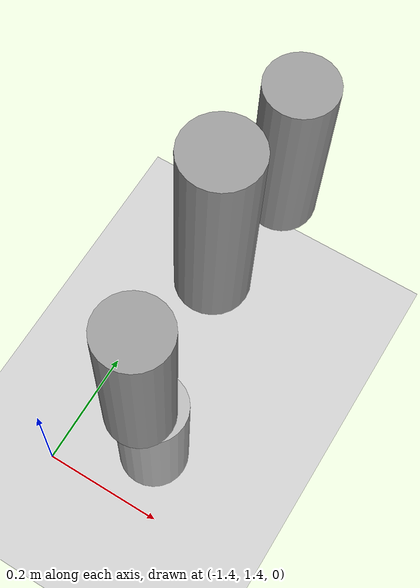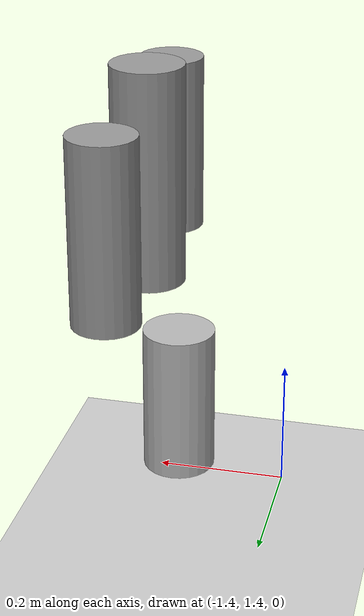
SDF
<sdf version="1.7">
 <world name="default">
  <model name="ground_plane">
   <static>1</static>
   <link name="link">
    <collision name="collision">
     <geometry><plane><normal>0 0 1</normal><size>100 100</size></plane></geometry>
     <surface>
      <contact><collide_bitmask>65535</collide_bitmask></contact>
      <friction><ode><mu>100</mu><mu2>50</mu2></ode></friction>
     </surface>
    </collision>
    <visual name="visual">
     <cast_shadows>0</cast_shadows>
     <geometry><plane><normal>0 0 1</normal><size>100 100</size></plane></geometry>
     <material>
      <script><uri>file://media/materials/scripts/gazebo.material</uri><name>Gazebo/Grey</name></script>
     </material>
    </visual>
   </link>
  </model>
  <model name="Rum_0">
   <link name="link">
    <inertial>
     <mass>1</mass>
     <inertia><ixx>0.145833</ixx><ixy>0</ixy><ixz>0</ixz><iyy>0.145833</iyy><iyz>0</iyz><izz>0.125</izz></inertia>
    </inertial>
    <visual name="visual">
     <geometry><cylinder><radius>0.0502294</radius><length>0.303781</length></cylinder></geometry>
     <material>
      <script><name>Gazebo/Grey</name><uri>file://media/materials/scripts/gazebo.material</uri></script>
      <shader type="pixel"/>
     </material>
    </visual>
    <collision name="collision">
     <geometry><cylinder><radius>0.050229</radius><length>0.303781</length></cylinder></geometry>
     <surface>
      <friction>
       <ode><mu>1</mu><mu2>1</mu2><fdir1>0 0 0</fdir1><slip1>0</slip1><slip2>0</slip2></ode>
       <torsional>
        <coefficient>1</coefficient>
        <patch_radius>0</patch_radius>
        <surface_radius>0</surface_radius>
        <use_patch_radius>1</use_patch_radius>
        <ode><slip>0</slip></ode>
       </torsional>
      </friction>
      <bounce><restitution_coefficient>0</restitution_coefficient><threshold>1e+06</threshold></bounce>
      <contact>
       <collide_without_contact>0</collide_without_contact>
       <collide_without_contact_bitmask>1</collide_without_contact_bitmask>
       <collide_bitmask>1</collide_bitmask>
       <ode>
        <soft_cfm>0</soft_cfm>
        <soft_erp>0.2</soft_erp>
        <kp>1e+13</kp>
        <kd>1</kd>
        <max_vel>0.01</max_vel>
        <min_depth>0</min_depth>
       </ode>
       <bullet>
        <split_impulse>1</split_impulse>
        <split_impulse_penetration_threshold>-0.01</split_impulse_penetration_threshold>
        <soft_cfm>0</soft_cfm>
        <soft_erp>0.2</soft_erp>
        <kp>1e+13</kp>
        <kd>1</kd>
       </bullet>
      </contact>
     </surface>
    </collision>
   </link>
   <static>0</static>
   <pose>-1.2434 1.62738 0.59189 -3.6e-05 6.9e-05 -0.001385</pose>
  </model>
  <model name="Tequila_0">
   <link name="link">
    <inertial>
     <mass>1</mass>
     <inertia><ixx>0.145833</ixx><ixy>0</ixy><ixz>0</ixz><iyy>0.145833</iyy><iyz>0</iyz><izz>0.125</izz></inertia>
    </inertial>
    <visual name="visual">
     <geometry><cylinder><radius>0.0463338</radius><length>0.255984</length></cylinder></geometry>
     <material>
      <script><name>Gazebo/Grey</name><uri>file://media/materials/scripts/gazebo.material</uri></script>
      <shader type="pixel"/>
     </material>
    </visual>
    <collision name="collision">
     <geometry><cylinder><radius>0.046334</radius><length>0.255984</length></cylinder></geometry>
     <surface>
      <friction>
       <ode><mu>1</mu><mu2>1</mu2><fdir1>0 0 0</fdir1><slip1>0</slip1><slip2>0</slip2></ode>
       <torsional>
        <coefficient>1</coefficient>
        <patch_radius>0</patch_radius>
        <surface_radius>0</surface_radius>
        <use_patch_radius>1</use_patch_radius>
        <ode><slip>0</slip></ode>
       </torsional>
      </friction>
      <bounce><restitution_coefficient>0</restitution_coefficient><threshold>1e+06</threshold></bounce>
      <contact>
       <collide_without_contact>0</collide_without_contact>
       <collide_without_contact_bitmask>1</collide_without_contact_bitmask>
       <collide_bitmask>1</collide_bitmask>
       <ode>
        <soft_cfm>0</soft_cfm>
        <soft_erp>0.2</soft_erp>
        <kp>1e+13</kp>
        <kd>1</kd>
        <max_vel>0.01</max_vel>
        <min_depth>0</min_depth>
       </ode>
       <bullet>
        <split_impulse>1</split_impulse>
        <split_impulse_penetration_threshold>-0.01</split_impulse_penetration_threshold>
        <soft_cfm>0</soft_cfm>
        <soft_erp>0.2</soft_erp>
        <kp>1e+13</kp>
        <kd>1</kd>
       </bullet>
      </contact>
     </surface>
    </collision>
   </link>
   <static>0</static>
   <pose>-1.22534 1.42384 0.567992 -9.6e-05 4.6e-05 -0.000441</pose>
  </model>
  <model name="Tequila_1">
   <link name="link">
    <inertial>
     <mass>1</mass>
     <inertia><ixx>0.145833</ixx><ixy>0</ixy><ixz>0</ixz><iyy>0.145833</iyy><iyz>0</iyz><izz>0.125</izz></inertia>
    </inertial>
    <visual name="visual">
     <geometry><cylinder><radius>0.0463338</radius><length>0.255984</length></cylinder></geometry>
     <material>
      <script><name>Gazebo/Grey</name><uri>file://media/materials/scripts/gazebo.material</uri></script>
      <shader type="pixel"/>
     </material>
    </visual>
    <collision name="collision">
     <geometry><cylinder><radius>0.046334</radius><length>0.255984</length></cylinder></geometry>
     <surface>
      <friction>
       <ode><mu>1</mu><mu2>1</mu2><fdir1>0 0 0</fdir1><slip1>0</slip1><slip2>0</slip2></ode>
       <torsional>
        <coefficient>1</coefficient>
        <patch_radius>0</patch_radius>
        <surface_radius>0</surface_radius>
        <use_patch_radius>1</use_patch_radius>
        <ode><slip>0</slip></ode>
       </torsional>
      </friction>
      <bounce><restitution_coefficient>0</restitution_coefficient><threshold>1e+06</threshold></bounce>
      <contact>
       <collide_without_contact>0</collide_without_contact>
       <collide_without_contact_bitmask>1</collide_without_contact_bitmask>
       <collide_bitmask>1</collide_bitmask>
       <ode>
        <soft_cfm>0</soft_cfm>
        <soft_erp>0.2</soft_erp>
        <kp>1e+13</kp>
        <kd>1</kd>
        <max_vel>0.01</max_vel>
        <min_depth>0</min_depth>
       </ode>
       <bullet>
        <split_impulse>1</split_impulse>
        <split_impulse_penetration_threshold>-0.01</split_impulse_penetration_threshold>
        <soft_cfm>0</soft_cfm>
        <soft_erp>0.2</soft_erp>
        <kp>1e+13</kp>
        <kd>1</kd>
       </bullet>
      </contact>
     </surface>
    </collision>
   </link>
   <static>0</static>
   <pose>-1.22534 1.77811 0.567991 -4.1e-05 7.4e-05 -0.001056</pose>
  </model>
  <model name="Beer_1">
   <link name="link">
    <pose>-0 0 0.115 0 -0 0</pose>
    <inertial>
     <mass>0.39</mass>
     <inertia><ixx>0.00058</ixx><ixy>0</ixy><ixz>0</ixz><iyy>0.00058</iyy><iyz>0</iyz><izz>0.00019</izz></inertia>
    </inertial>
    <visual name="visual">
     <geometry><cylinder><radius>0.055</radius><length>0.23</length></cylinder></geometry>
     <material>
      <script>
       <uri>model://beer/materials/scripts</uri>
       <uri>model://beer/materials/textures</uri>
       <name>Beer/Diffuse</name>
      </script>
      <shader type="pixel"/>
     </material>
    </visual>
    <collision name="collision">
     <geometry><cylinder><radius>0.055</radius><length>0.23</length></cylinder></geometry>
     <surface>
      <friction>
       <ode><mu>1</mu><mu2>1</mu2><fdir1>0 0 0</fdir1><slip1>0</slip1><slip2>0</slip2></ode>
       <torsional>
        <coefficient>1</coefficient>
        <patch_radius>0</patch_radius>
        <surface_radius>0</surface_radius>
        <use_patch_radius>1</use_patch_radius>
        <ode><slip>0</slip></ode>
       </torsional>
      </friction>
      <bounce><restitution_coefficient>0</restitution_coefficient><threshold>1e+06</threshold></bounce>
      <contact>
       <collide_without_contact>0</collide_without_contact>
       <collide_without_contact_bitmask>1</collide_without_contact_bitmask>
       <collide_bitmask>1</collide_bitmask>
       <ode>
        <soft_cfm>0</soft_cfm>
        <soft_erp>0.2</soft_erp>
        <kp>1e+13</kp>
        <kd>1</kd>
        <max_vel>0.01</max_vel>
        <min_depth>0</min_depth>
       </ode>
       <bullet>
        <split_impulse>1</split_impulse>
        <split_impulse_penetration_threshold>-0.01</split_impulse_penetration_threshold>
        <soft_cfm>0</soft_cfm>
        <soft_erp>0.2</soft_erp>
        <kp>1e+13</kp>
        <kd>1</kd>
       </bullet>
      </contact>
     </surface>
    </collision>
   </link>
   <static>0</static>
   <pose>-1.24898 1.4797 0.060003 5.6e-05 -0 0.004371</pose>
  </model>
 </world>
</sdf>
